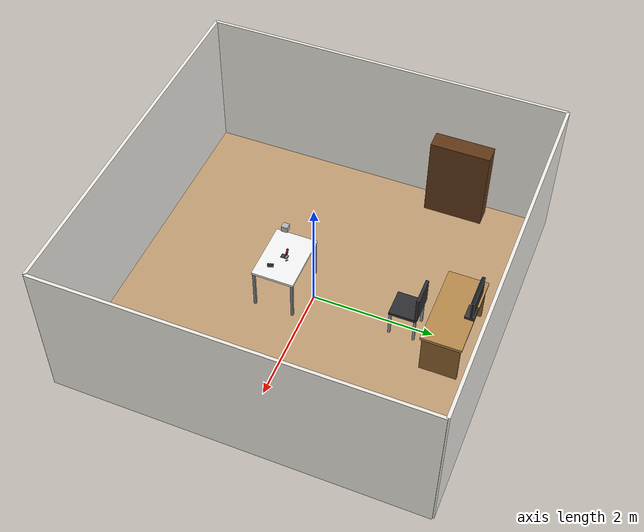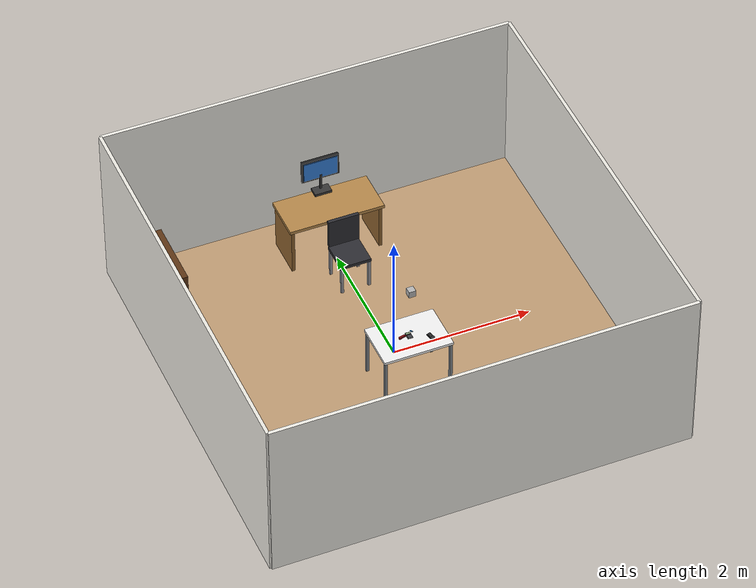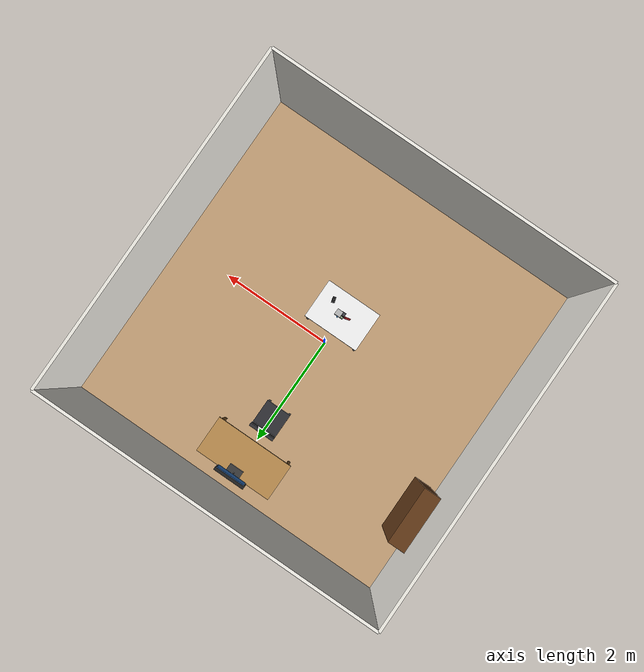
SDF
<?xml version="1.0" ?>
<sdf version="1.10">
  <world name="bps_room">
    <physics name="1ms" type="ignored">
      <max_step_size>0.001</max_step_size>
      <real_time_factor>1</real_time_factor>
      <real_time_update_rate>1000</real_time_update_rate>
    </physics>
    <gravity>0 0 -9.8</gravity>
    <magnetic_field>5.5645e-06 2.28758e-05 -4.23884e-05</magnetic_field>
    <atmosphere type="adiabatic"/>
    <scene>
      <ambient>0.4 0.4 0.4 1</ambient>
      <background>0.7 0.7 0.7 1</background>
      <shadows>true</shadows>
    </scene>
    <plugin name="gz::sim::systems::Physics" filename="gz-sim-physics-system"/>
    <plugin name="gz::sim::systems::UserCommands" filename="gz-sim-user-commands-system"/>
    <plugin name="gz::sim::systems::SceneBroadcaster" filename="gz-sim-scene-broadcaster-system"/>
    <plugin name="gz::sim::systems::Sensors" filename="gz-sim-sensors-system">
      <render_engine>ogre2</render_engine>
    </plugin>
    <plugin name="gz::sim::systems::Contact" filename="gz-sim-contact-system"/>
    <plugin filename="gz-sim-label-system" name="gz::sim::systems::Label"/>
    <light name="sun" type="directional">
      <pose>0 0 10 0 0 0</pose>
      <cast_shadows>true</cast_shadows>
      <intensity>1</intensity>
      <direction>-0.5 0.1 -0.9</direction>
      <diffuse>0.8 0.8 0.8 1</diffuse>
      <specular>0.2 0.2 0.2 1</specular>
      <attenuation><range>1000</range><linear>0.01</linear><constant>0.9</constant><quadratic>0.001</quadratic></attenuation>
      <spot><inner_angle>0</inner_angle><outer_angle>0</outer_angle><falloff>0</falloff></spot>
    </light>
    <light name="ambient_fill" type="directional">
      <pose>0 0 4 0 0 0</pose>
      <diffuse>0.4 0.4 0.4 1</diffuse>
      <specular>0.0 0.0 0.0 1</specular>
      <direction>0.3 -0.3 -1</direction>
    </light>
    <model name="floor">
      <static>true</static>
      <pose>0 0 0 0 0 0</pose>
      <link name="link">
        <collision name="collision"><geometry><box><size>6 6 0.02</size></box></geometry></collision>
        <visual name="visual"><geometry><box><size>6 6 0.02</size></box></geometry><material><ambient>0.76 0.62 0.46 1</ambient><diffuse>0.76 0.62 0.46 1</diffuse></material></visual>
      </link>
    </model>
    <model name="wall_north">
      <static>true</static>
      <pose>0 3 1.25 0 0 0</pose>
      <link name="link">
        <collision name="collision"><geometry><box><size>6 0.05 2.5</size></box></geometry></collision>
        <visual name="visual"><geometry><box><size>6 0.05 2.5</size></box></geometry><material><ambient>0.95 0.94 0.91 1</ambient><diffuse>0.95 0.94 0.91 1</diffuse></material></visual>
      </link>
    </model>
    <model name="wall_south">
      <static>true</static>
      <pose>0 -3 1.25 0 0 0</pose>
      <link name="link">
        <collision name="collision"><geometry><box><size>6 0.05 2.5</size></box></geometry></collision>
        <visual name="visual"><geometry><box><size>6 0.05 2.5</size></box></geometry><material><ambient>0.95 0.94 0.91 1</ambient><diffuse>0.95 0.94 0.91 1</diffuse></material></visual>
      </link>
    </model>
    <model name="wall_east">
      <static>true</static>
      <pose>3 0 1.25 0 0 0</pose>
      <link name="link">
        <collision name="collision"><geometry><box><size>0.05 6 2.5</size></box></geometry></collision>
        <visual name="visual"><geometry><box><size>0.05 6 2.5</size></box></geometry><material><ambient>0.93 0.92 0.89 1</ambient><diffuse>0.93 0.92 0.89 1</diffuse></material></visual>
      </link>
    </model>
    <model name="wall_west">
      <static>true</static>
      <pose>-3 0 1.25 0 0 0</pose>
      <link name="link">
        <collision name="collision"><geometry><box><size>0.05 6 2.5</size></box></geometry></collision>
        <visual name="visual"><geometry><box><size>0.05 6 2.5</size></box></geometry><material><ambient>0.93 0.92 0.89 1</ambient><diffuse>0.93 0.92 0.89 1</diffuse></material></visual>
      </link>
    </model>
    <model name="bookshelf_body">
      <static>true</static>
      <pose>-2.7 1.5 0.75 0 0 0</pose>
      <link name="link">
        <collision name="collision"><geometry><box><size>0.3 1.0 1.5</size></box></geometry></collision>
        <visual name="visual"><geometry><box><size>0.3 1.0 1.5</size></box></geometry><material><ambient>0.38 0.22 0.09 1</ambient><diffuse>0.38 0.22 0.09 1</diffuse></material></visual>
      </link>
    </model>
    <model name="shelf_1">
      <static>true</static>
      <pose>-2.7 1.5 0.4 0 0 0</pose>
      <link name="link">
        <collision name="collision"><geometry><box><size>0.28 0.95 0.02</size></box></geometry></collision>
        <visual name="visual"><geometry><box><size>0.28 0.95 0.02</size></box></geometry><material><ambient>0.50 0.32 0.14 1</ambient><diffuse>0.50 0.32 0.14 1</diffuse></material></visual>
      </link>
    </model>
    <model name="shelf_2">
      <static>true</static>
      <pose>-2.7 1.5 0.85 0 0 0</pose>
      <link name="link">
        <collision name="collision"><geometry><box><size>0.28 0.95 0.02</size></box></geometry></collision>
        <visual name="visual"><geometry><box><size>0.28 0.95 0.02</size></box></geometry><material><ambient>0.50 0.32 0.14 1</ambient><diffuse>0.50 0.32 0.14 1</diffuse></material></visual>
      </link>
    </model>
    <model name="shelf_3">
      <static>true</static>
      <pose>-2.7 1.5 1.25 0 0 0</pose>
      <link name="link">
        <collision name="collision"><geometry><box><size>0.28 0.95 0.02</size></box></geometry></collision>
        <visual name="visual"><geometry><box><size>0.28 0.95 0.02</size></box></geometry><material><ambient>0.50 0.32 0.14 1</ambient><diffuse>0.50 0.32 0.14 1</diffuse></material></visual>
      </link>
    </model>
    <model name="books_row1">
      <static>true</static>
      <pose>-2.62 1.5 0.62 0 0 0</pose>
      <link name="link">
        <visual name="visual"><geometry><box><size>0.04 0.8 0.2</size></box></geometry><material><ambient>0.78 0.18 0.18 1</ambient><diffuse>0.78 0.18 0.18 1</diffuse></material></visual>
      </link>
    </model>
    <model name="books_row2">
      <static>true</static>
      <pose>-2.62 1.5 1.06 0 0 0</pose>
      <link name="link">
        <visual name="visual"><geometry><box><size>0.04 0.7 0.18</size></box></geometry><material><ambient>0.18 0.32 0.72 1</ambient><diffuse>0.18 0.32 0.72 1</diffuse></material></visual>
      </link>
    </model>
    <model name="desk">
      <static>true</static>
      <pose>0 2.3 0.75 0 0 0</pose>
      <link name="link">
        <collision name="collision"><geometry><box><size>1.4 0.65 0.05</size></box></geometry></collision>
        <visual name="visual"><geometry><box><size>1.4 0.65 0.05</size></box></geometry><material><ambient>0.72 0.54 0.30 1</ambient><diffuse>0.72 0.54 0.30 1</diffuse></material></visual>
      </link>
    </model>
    <model name="desk_leg_left">
      <static>true</static>
      <pose>-0.65 2.3 0.375 0 0 0</pose>
      <link name="link">
        <collision name="collision"><geometry><box><size>0.05 0.6 0.75</size></box></geometry></collision>
        <visual name="visual"><geometry><box><size>0.05 0.6 0.75</size></box></geometry><material><ambient>0.55 0.38 0.18 1</ambient><diffuse>0.55 0.38 0.18 1</diffuse></material></visual>
      </link>
    </model>
    <model name="desk_leg_right">
      <static>true</static>
      <pose>0.65 2.3 0.375 0 0 0</pose>
      <link name="link">
        <collision name="collision"><geometry><box><size>0.05 0.6 0.75</size></box></geometry></collision>
        <visual name="visual"><geometry><box><size>0.05 0.6 0.75</size></box></geometry><material><ambient>0.55 0.38 0.18 1</ambient><diffuse>0.55 0.38 0.18 1</diffuse></material></visual>
      </link>
    </model>
    <model name="monitor_base">
      <static>true</static>
      <pose>0 2.55 0.82 0 0 0</pose>
      <link name="link">
        <collision name="collision"><geometry><box><size>0.25 0.15 0.04</size></box></geometry></collision>
        <visual name="visual"><geometry><box><size>0.25 0.15 0.04</size></box></geometry><material><ambient>0.22 0.22 0.22 1</ambient><diffuse>0.22 0.22 0.22 1</diffuse></material></visual>
      </link>
    </model>
    <model name="monitor_stand">
      <static>true</static>
      <pose>0 2.58 0.97 0 0 0</pose>
      <link name="link">
        <collision name="collision"><geometry><box><size>0.03 0.03 0.26</size></box></geometry></collision>
        <visual name="visual"><geometry><box><size>0.03 0.03 0.26</size></box></geometry><material><ambient>0.22 0.22 0.22 1</ambient><diffuse>0.22 0.22 0.22 1</diffuse></material></visual>
      </link>
    </model>
    <model name="monitor_screen">
      <static>true</static>
      <pose>0 2.6 1.2 0 0 0</pose>
      <link name="link">
        <collision name="collision"><geometry><box><size>0.55 0.05 0.35</size></box></geometry></collision>
        <visual name="visual"><geometry><box><size>0.55 0.05 0.35</size></box></geometry><material><ambient>0.12 0.12 0.12 1</ambient><diffuse>0.12 0.12 0.12 1</diffuse></material></visual>
      </link>
    </model>
    <model name="monitor_face">
      <static>true</static>
      <pose>0 2.57 1.2 0 0 0</pose>
      <link name="link">
        <visual name="visual"><geometry><box><size>0.5 0.01 0.3</size></box></geometry><material><ambient>0.22 0.52 0.88 1</ambient><diffuse>0.22 0.52 0.88 1</diffuse><emissive>0.10 0.25 0.45 1</emissive></material></visual>
      </link>
    </model>
    <model name="chair_seat">
      <static>true</static>
      <pose>0 1.55 0.48 0 0 0</pose>
      <link name="link">
        <collision name="collision"><geometry><box><size>0.45 0.45 0.05</size></box></geometry></collision>
        <visual name="visual"><geometry><box><size>0.45 0.45 0.05</size></box></geometry><material><ambient>0.18 0.18 0.20 1</ambient><diffuse>0.18 0.18 0.20 1</diffuse></material></visual>
      </link>
    </model>
    <model name="chair_back">
      <static>true</static>
      <pose>0 1.77 0.75 0 0 0</pose>
      <link name="link">
        <collision name="collision"><geometry><box><size>0.45 0.05 0.45</size></box></geometry></collision>
        <visual name="visual"><geometry><box><size>0.45 0.05 0.45</size></box></geometry><material><ambient>0.18 0.18 0.20 1</ambient><diffuse>0.18 0.18 0.20 1</diffuse></material></visual>
      </link>
    </model>
    <model name="chair_leg_fl">
      <static>true</static>
      <pose>-0.2 1.35 0.24 0 0 0</pose>
      <link name="link">
        <collision name="collision"><geometry><box><size>0.04 0.04 0.48</size></box></geometry></collision>
        <visual name="visual"><geometry><box><size>0.04 0.04 0.48</size></box></geometry><material><ambient>0.60 0.60 0.62 1</ambient><diffuse>0.60 0.60 0.62 1</diffuse></material></visual>
      </link>
    </model>
    <model name="chair_leg_fr">
      <static>true</static>
      <pose>0.2 1.35 0.24 0 0 0</pose>
      <link name="link">
        <collision name="collision"><geometry><box><size>0.04 0.04 0.48</size></box></geometry></collision>
        <visual name="visual"><geometry><box><size>0.04 0.04 0.48</size></box></geometry><material><ambient>0.60 0.60 0.62 1</ambient><diffuse>0.60 0.60 0.62 1</diffuse></material></visual>
      </link>
    </model>
    <model name="chair_leg_bl">
      <static>true</static>
      <pose>-0.2 1.75 0.24 0 0 0</pose>
      <link name="link">
        <collision name="collision"><geometry><box><size>0.04 0.04 0.48</size></box></geometry></collision>
        <visual name="visual"><geometry><box><size>0.04 0.04 0.48</size></box></geometry><material><ambient>0.60 0.60 0.62 1</ambient><diffuse>0.60 0.60 0.62 1</diffuse></material></visual>
      </link>
    </model>
    <model name="chair_leg_br">
      <static>true</static>
      <pose>0.2 1.75 0.24 0 0 0</pose>
      <link name="link">
        <collision name="collision"><geometry><box><size>0.04 0.04 0.48</size></box></geometry></collision>
        <visual name="visual"><geometry><box><size>0.04 0.04 0.48</size></box></geometry><material><ambient>0.60 0.60 0.62 1</ambient><diffuse>0.60 0.60 0.62 1</diffuse></material></visual>
      </link>
    </model>
    <model name="experiment_table">
      <static>true</static>
      <pose>0 -0.5 0.75 0 0 0</pose>
      <link name="link">
        <collision name="collision"><geometry><box><size>1.0 0.7 0.04</size></box></geometry></collision>
        <visual name="visual"><geometry><box><size>1.0 0.7 0.04</size></box></geometry><material><ambient>0.96 0.96 0.96 1</ambient><diffuse>0.96 0.96 0.96 1</diffuse></material></visual>
      </link>
    </model>
    <model name="table_leg_fl">
      <static>true</static>
      <pose>-0.47 -0.82 0.375 0 0 0</pose>
      <link name="link">
        <collision name="collision"><geometry><box><size>0.04 0.04 0.75</size></box></geometry></collision>
        <visual name="visual"><geometry><box><size>0.04 0.04 0.75</size></box></geometry><material><ambient>0.50 0.52 0.54 1</ambient><diffuse>0.50 0.52 0.54 1</diffuse></material></visual>
      </link>
    </model>
    <model name="table_leg_fr">
      <static>true</static>
      <pose>0.47 -0.82 0.375 0 0 0</pose>
      <link name="link">
        <collision name="collision"><geometry><box><size>0.04 0.04 0.75</size></box></geometry></collision>
        <visual name="visual"><geometry><box><size>0.04 0.04 0.75</size></box></geometry><material><ambient>0.50 0.52 0.54 1</ambient><diffuse>0.50 0.52 0.54 1</diffuse></material></visual>
      </link>
    </model>
    <model name="table_leg_bl">
      <static>true</static>
      <pose>-0.47 -0.18 0.375 0 0 0</pose>
      <link name="link">
        <collision name="collision"><geometry><box><size>0.04 0.04 0.75</size></box></geometry></collision>
        <visual name="visual"><geometry><box><size>0.04 0.04 0.75</size></box></geometry><material><ambient>0.50 0.52 0.54 1</ambient><diffuse>0.50 0.52 0.54 1</diffuse></material></visual>
      </link>
    </model>
    <model name="table_leg_br">
      <static>true</static>
      <pose>0.47 -0.18 0.375 0 0 0</pose>
      <link name="link">
        <collision name="collision"><geometry><box><size>0.04 0.04 0.75</size></box></geometry></collision>
        <visual name="visual"><geometry><box><size>0.04 0.04 0.75</size></box></geometry><material><ambient>0.50 0.52 0.54 1</ambient><diffuse>0.50 0.52 0.54 1</diffuse></material></visual>
      </link>
    </model>

    <!-- ============ OFFICE OBJECTS (each = ONE model, ONE link, multi-visual) ============ -->

    <!-- Calculator: body + screen + button pad. Semantic label = 3 -->
    <model name="calculator_sem3">
      <static>true</static>
      <pose>0 -0.5 0.7775 0 0 0</pose>
      <link name="link">
        <collision name="collision_body">
          <geometry><box><size>0.075 0.115 0.009</size></box></geometry>
        </collision>
        <visual name="visual_body">
          <geometry><box><size>0.075 0.115 0.009</size></box></geometry>
          <material><ambient>0.12 0.12 0.13 1</ambient><diffuse>0.12 0.12 0.13 1</diffuse></material>
          <plugin filename="gz-sim-label-system" name="gz::sim::systems::Label"><label>3</label></plugin>
        </visual>
        <visual name="visual_screen">
          <pose>0 0.035 0.007 0 0 0</pose>
          <geometry><box><size>0.065 0.03 0.005</size></box></geometry>
          <material><ambient>0.55 0.65 0.50 1</ambient><diffuse>0.55 0.65 0.50 1</diffuse></material>
          <plugin filename="gz-sim-label-system" name="gz::sim::systems::Label"><label>3</label></plugin>
        </visual>
        <visual name="visual_buttons">
          <pose>0 -0.025 0.007 0 0 0</pose>
          <geometry><box><size>0.065 0.06 0.004</size></box></geometry>
          <material><ambient>0.25 0.25 0.27 1</ambient><diffuse>0.25 0.25 0.27 1</diffuse></material>
          <plugin filename="gz-sim-label-system" name="gz::sim::systems::Label"><label>3</label></plugin>
        </visual>
      </link>
    </model>

    <!-- USB flash drive: body + connector tip, touching calculator's near corner. Semantic label = 1 -->
    <model name="usb_drive_sem1">
      <static>true</static>
      <pose>0.062 -0.435 0.7765 0 0 0.7854</pose>
      <link name="link">
        <collision name="collision_body">
          <geometry><box><size>0.013 0.035 0.008</size></box></geometry>
        </collision>
        <visual name="visual_body">
          <geometry><box><size>0.013 0.035 0.008</size></box></geometry>
          <material><ambient>0.10 0.45 0.75 1</ambient><diffuse>0.10 0.45 0.75 1</diffuse></material>
          <plugin filename="gz-sim-label-system" name="gz::sim::systems::Label"><label>1</label></plugin>
        </visual>
        <visual name="visual_connector">
          <pose>0 -0.022 0 0 0 0</pose>
          <geometry><box><size>0.007 0.012 0.004</size></box></geometry>
          <material><ambient>0.75 0.75 0.78 1</ambient><diffuse>0.75 0.75 0.78 1</diffuse></material>
          <plugin filename="gz-sim-label-system" name="gz::sim::systems::Label"><label>1</label></plugin>
        </visual>
      </link>
    </model>

    <!-- Stapler: base + top arm + hinge. Base right edge (-0.0925+0.055=-0.0375) now touches
         calculator's left edge (0-0.075/2=-0.0375) exactly. Semantic label = 4 -->
    <model name="stapler_sem4">
      <static>true</static>
      <pose>-0.0925 -0.5 0.7825 0 0 0.26</pose>
      <link name="link">
        <collision name="collision_base">
          <geometry><box><size>0.11 0.032 0.012</size></box></geometry>
        </collision>
        <visual name="visual_base">
          <geometry><box><size>0.11 0.032 0.012</size></box></geometry>
          <material><ambient>0.75 0.08 0.10 1</ambient><diffuse>0.75 0.08 0.10 1</diffuse></material>
          <plugin filename="gz-sim-label-system" name="gz::sim::systems::Label"><label>4</label></plugin>
        </visual>
        <visual name="visual_top_arm">
          <pose>-0.008 0 0.013 0 0 -0.08</pose>
          <geometry><box><size>0.095 0.026 0.010</size></box></geometry>
          <material><ambient>0.55 0.06 0.08 1</ambient><diffuse>0.55 0.06 0.08 1</diffuse></material>
          <plugin filename="gz-sim-label-system" name="gz::sim::systems::Label"><label>4</label></plugin>
        </visual>
        <visual name="visual_hinge">
          <pose>0.045 0 0.016 0 0 0</pose>
          <geometry><cylinder><radius>0.007</radius><length>0.03</length></cylinder></geometry>
          <material><ambient>0.30 0.30 0.32 1</ambient><diffuse>0.30 0.30 0.32 1</diffuse></material>
          <plugin filename="gz-sim-label-system" name="gz::sim::systems::Label"><label>4</label></plugin>
        </visual>
      </link>
    </model>

    <!-- Computer mouse: body + dome + scroll wheel, isolated from the cluster. Semantic label = 2 -->
    <model name="mouse_sem2">
      <static>true</static>
      <pose>0.26 -0.63 0.785 0 0 0.2618</pose>
      <link name="link">
        <collision name="collision_body">
          <geometry><box><size>0.055 0.10 0.022</size></box></geometry>
        </collision>
        <visual name="visual_body">
          <geometry><box><size>0.055 0.10 0.022</size></box></geometry>
          <material><ambient>0.15 0.15 0.16 1</ambient><diffuse>0.15 0.15 0.16 1</diffuse></material>
          <plugin filename="gz-sim-label-system" name="gz::sim::systems::Label"><label>2</label></plugin>
        </visual>
        <visual name="mouse_dome">
          <pose>0 0 0.012 0 0 0</pose>
          <geometry><sphere><radius>0.024</radius></sphere></geometry>
          <material><ambient>0.18 0.18 0.18 1</ambient><diffuse>0.18 0.18 0.18 1</diffuse></material>
          <plugin filename="gz-sim-label-system" name="gz::sim::systems::Label"><label>2</label></plugin>
        </visual>
        <visual name="visual_wheel">
          <pose>0 0.025 0.018 1.5708 0 0</pose>
          <geometry><cylinder><radius>0.006</radius><length>0.012</length></cylinder></geometry>
          <material><ambient>0.05 0.05 0.05 1</ambient><diffuse>0.05 0.05 0.05 1</diffuse></material>
          <plugin filename="gz-sim-label-system" name="gz::sim::systems::Label"><label>2</label></plugin>
        </visual>
      </link>
    </model>

    <model name="depth_camera">
      <static>true</static>
      <self_collide>false</self_collide>
      <pose>0 -0.5 1.57 0 1.5708 0</pose>
      <link name="link">
        <pose>0.05 0.05 0.05 0 0 0</pose>
        <inertial><mass>0.1</mass><inertia><ixx>0.000166667</ixx><iyy>0.000166667</iyy><izz>0.000166667</izz><ixy>0</ixy><ixz>0</ixz><iyz>0</iyz></inertia><pose>0 0 0 0 0 0</pose></inertial>
        <collision name="collision"><geometry><box><size>0.1 0.1 0.1</size></box></geometry><surface><friction><ode/></friction><bounce/><contact/></surface></collision>
        <visual name="visual"><geometry><box><size>0.1 0.1 0.1</size></box></geometry></visual>
        <sensor name="depth_camera1" type="depth_camera">
          <pose>0 0 0 0 0 0</pose>
          <topic>depth_camera</topic>
          <update_rate>10</update_rate>
          <enable_metrics>false</enable_metrics>
          <camera>
            <horizontal_fov>1.2</horizontal_fov>
            <image><width>640</width><height>480</height><format>R_FLOAT32</format><anti_aliasing>4</anti_aliasing></image>
            <camera_info_topic>__default__</camera_info_topic>
            <trigger_topic></trigger_topic>
            <triggered>false</triggered>
            <clip><near>0.1</near><far>2</far></clip>
            <save enabled="false"><path>__default__</path></save>
            <visibility_mask>4294967295</visibility_mask>
            <noise><type>none</type><mean>0</mean><stddev>0</stddev></noise>
            <distortion><k1>0</k1><k2>0</k2><k3>0</k3><p1>0</p1><p2>0</p2><center>0.5 0.5</center></distortion>
            <lens><type>stereographic</type><scale_to_hfov>true</scale_to_hfov><cutoff_angle>1.5707963267948966</cutoff_angle><env_texture_size>256</env_texture_size></lens>
            <optical_frame_id></optical_frame_id>
          </camera>
        </sensor>
        <sensor name="rgb_camera" type="camera">
          <pose>0 0 0 0 0 0</pose>
          <topic>rgb_camera</topic>
          <update_rate>10</update_rate>
          <enable_metrics>false</enable_metrics>
          <camera>
            <horizontal_fov>1.2</horizontal_fov>
            <image><width>640</width><height>480</height><format>RGB_INT8</format><anti_aliasing>4</anti_aliasing></image>
            <camera_info_topic>__default__</camera_info_topic>
            <trigger_topic></trigger_topic>
            <triggered>false</triggered>
            <clip><near>0.1</near><far>2</far></clip>
            <save enabled="false"><path>__default__</path></save>
            <visibility_mask>4294967295</visibility_mask>
            <noise><type>none</type><mean>0</mean><stddev>0</stddev></noise>
            <distortion><k1>0</k1><k2>0</k2><k3>0</k3><p1>0</p1><p2>0</p2><center>0.5 0.5</center></distortion>
            <lens><type>stereographic</type><scale_to_hfov>true</scale_to_hfov><cutoff_angle>1.5707963267948966</cutoff_angle><env_texture_size>256</env_texture_size></lens>
            <optical_frame_id></optical_frame_id>
          </camera>
        </sensor>
        <sensor name="semantic_camera" type="segmentation">
          <pose>0 0 0 0 0 0</pose>
          <topic>semantic_camera</topic>
          <always_on>true</always_on>
          <update_rate>10</update_rate>
          <camera>
            <segmentation_type>semantic</segmentation_type>
            <horizontal_fov>1.2</horizontal_fov>
            <image><width>640</width><height>480</height><format>RGB_INT8</format>
            <anti_aliasing>4</anti_aliasing></image>
            <clip><near>0.1</near><far>2.0</far></clip>
          </camera>
        </sensor>
        <enable_wind>false</enable_wind>
      </link>
    </model>
  </world>
</sdf>
